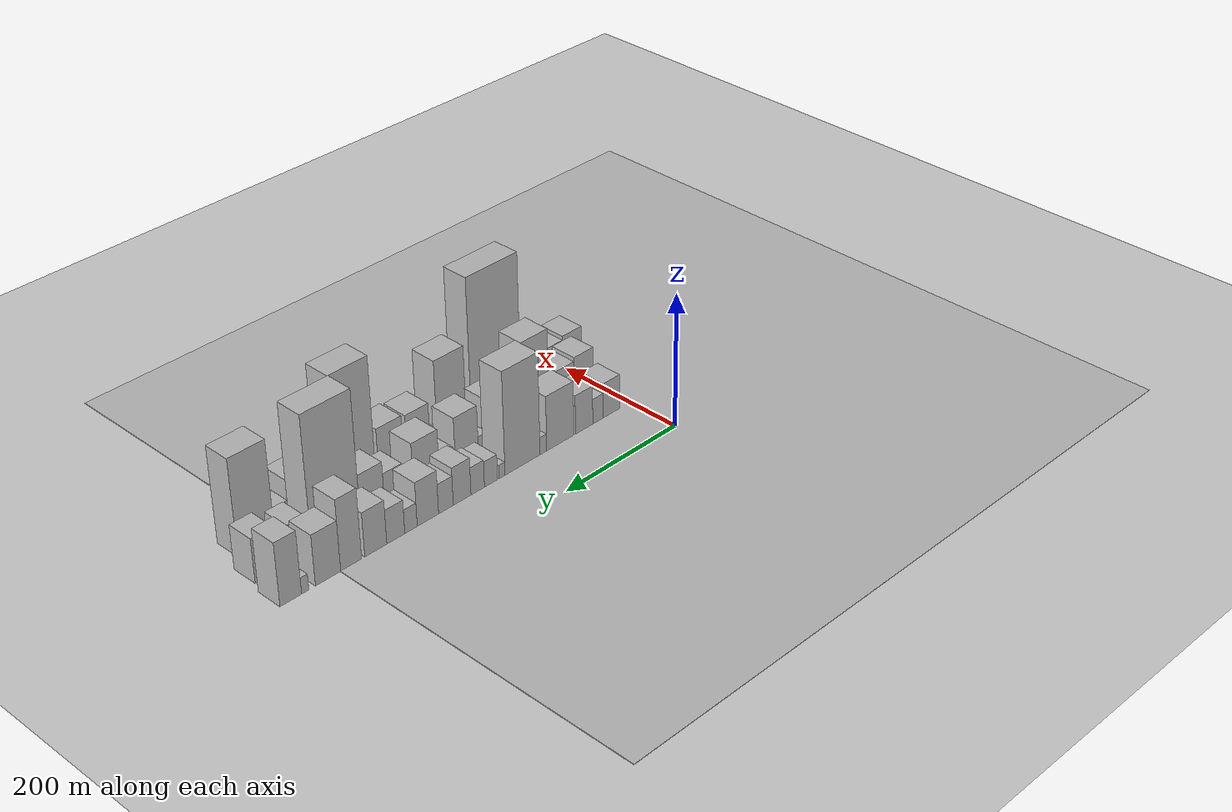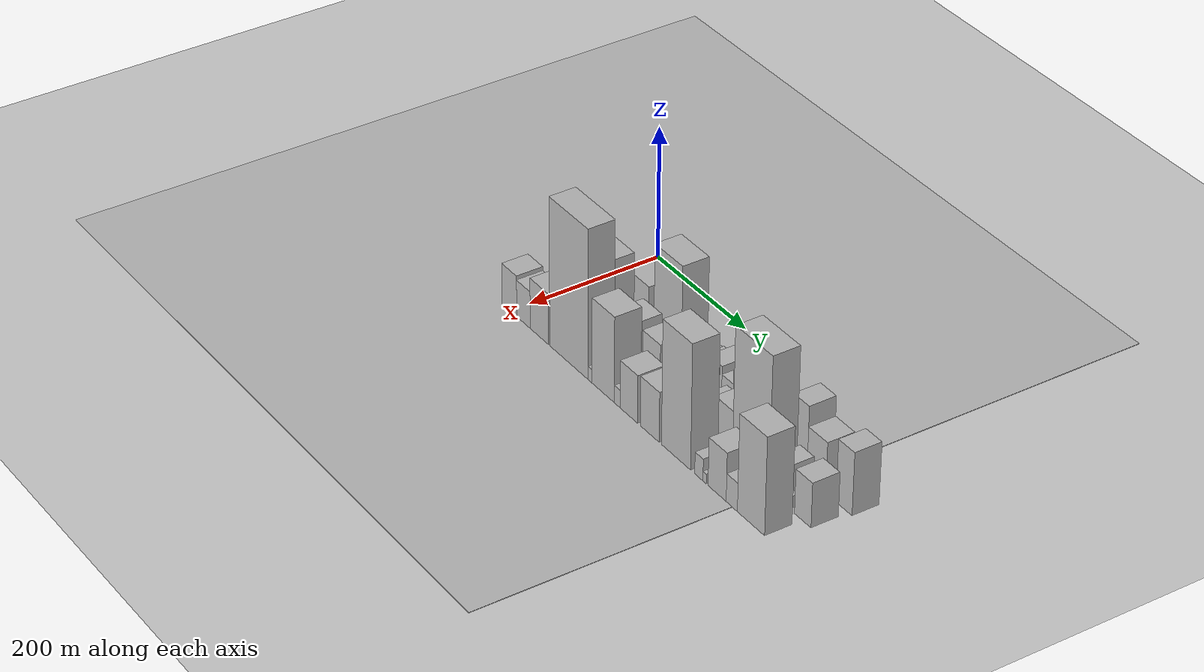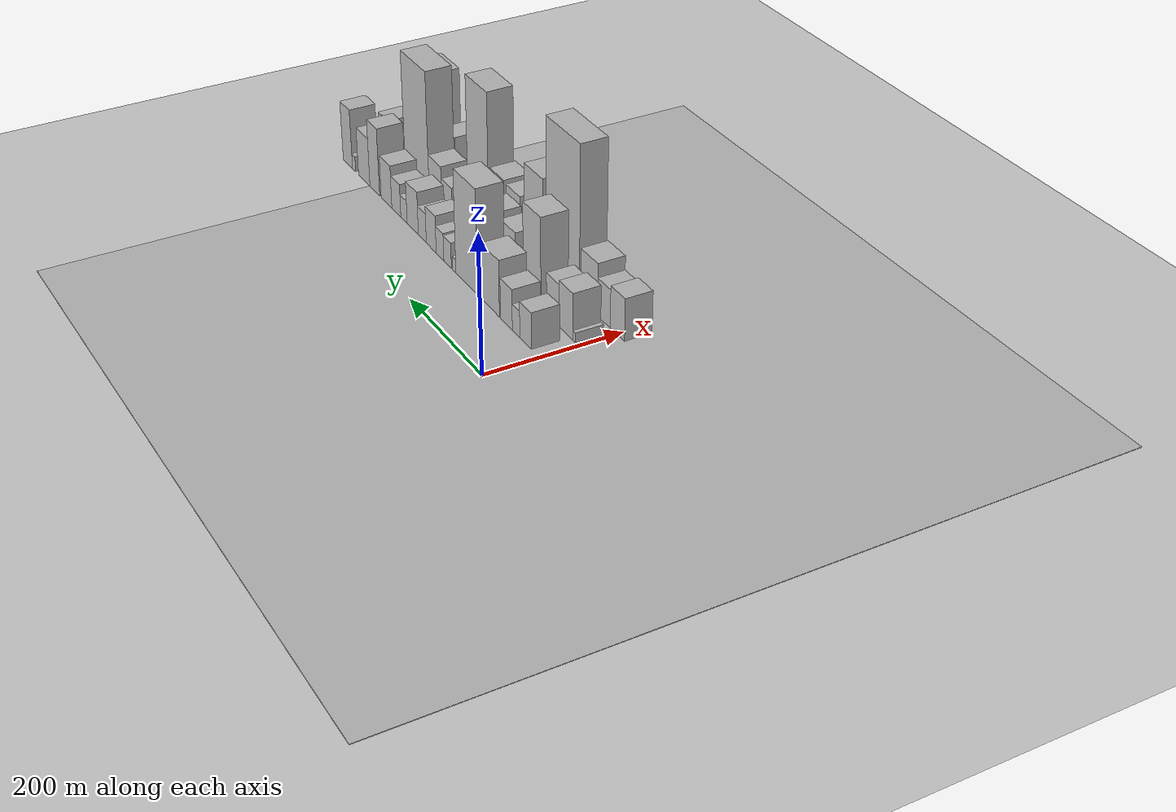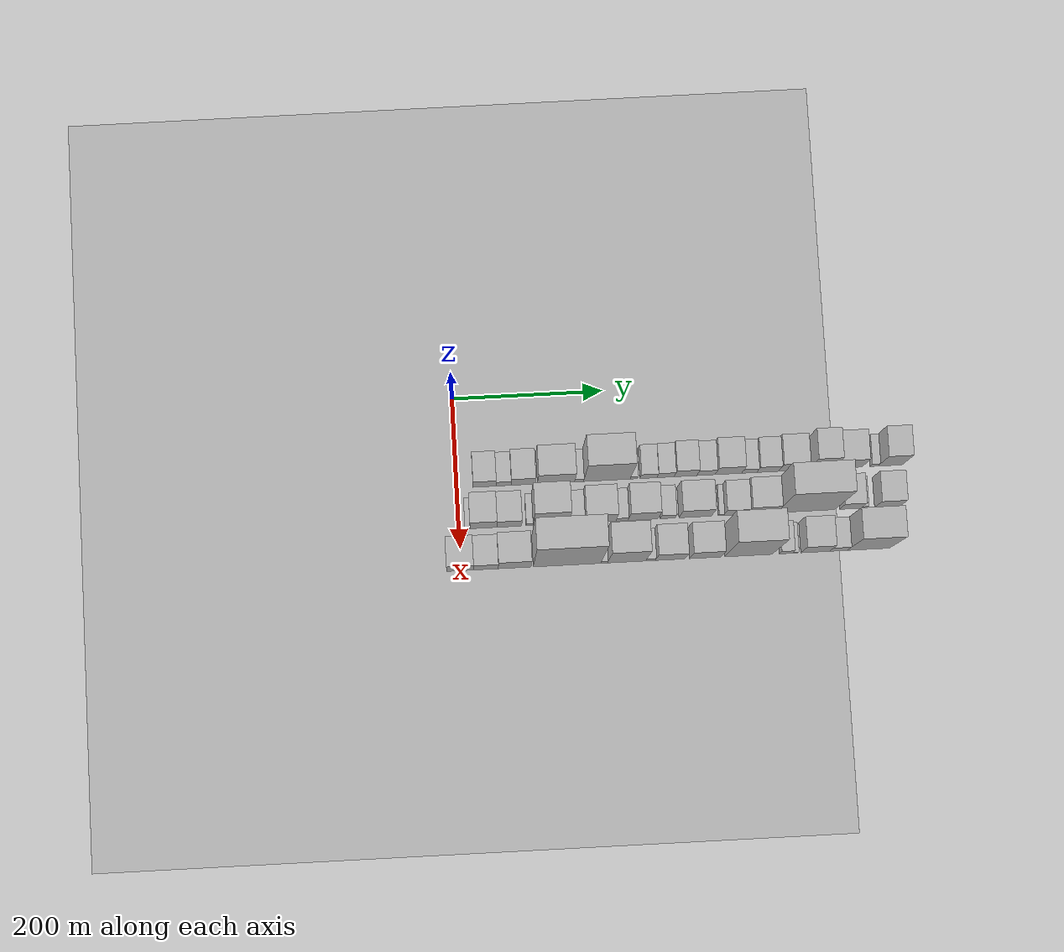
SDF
<sdf version="1.6">
 <world name="default">
  <include><name>ground_plane_1</name><uri>model://HANNAS_ground_plane</uri></include>
  <include>
   <name>ground_plane_2</name>
   <uri>model://HANNAS_ground_plane</uri>
   <pose>100 0 0  0 0 0</pose>
  </include>
  <model name="building_16">
   <static>1</static>
   <pose>100.0000 36.3263 0 0.000000 0.000000 0.000000</pose>
   <link name="link">
    <pose>0 0 27.00 0 0 0</pose>
    <collision name="collision"><geometry><box><size>40.0000 30.5769 54.0000</size></box></geometry></collision>
    <visual name="visual">
     <cast_shadows>0</cast_shadows>
     <geometry><box><size>40.0000 30.5769 54.0000</size></box></geometry>
     <material>
      <script>
       <uri>model://HANNAS_wall/materials/scripts</uri>
       <uri>model://HANNAS_wall/materials/textures</uri>
       <name>vrc/HANNAS_wall</name>
      </script>
     </material>
    </visual>
   </link>
  </model>
  <model name="building_17">
   <static>1</static>
   <pose>100.0000 61.5209 0 0.000000 0.000000 0.000000</pose>
   <link name="link">
    <pose>0 0 19.50 0 0 0</pose>
    <collision name="collision"><geometry><box><size>40.0000 19.8122 39.0000</size></box></geometry></collision>
    <visual name="visual">
     <cast_shadows>0</cast_shadows>
     <geometry><box><size>40.0000 19.8122 39.0000</size></box></geometry>
     <material>
      <script>
       <uri>model://HANNAS_wall/materials/scripts</uri>
       <uri>model://HANNAS_wall/materials/textures</uri>
       <name>vrc/HANNAS_wall</name>
      </script>
     </material>
    </visual>
   </link>
  </model>
  <model name="building_18">
   <static>1</static>
   <pose>100.0000 87.4213 0 0.000000 0.000000 0.000000</pose>
   <link name="link">
    <pose>0 0 30.00 0 0 0</pose>
    <collision name="collision"><geometry><box><size>40.0000 31.9886 60.0000</size></box></geometry></collision>
    <visual name="visual">
     <cast_shadows>0</cast_shadows>
     <geometry><box><size>40.0000 31.9886 60.0000</size></box></geometry>
     <material>
      <script>
       <uri>model://HANNAS_wall/materials/scripts</uri>
       <uri>model://HANNAS_wall/materials/textures</uri>
       <name>vrc/HANNAS_wall</name>
      </script>
     </material>
    </visual>
   </link>
  </model>
  <model name="building_19">
   <static>1</static>
   <pose>100.0000 131.0985 0 0.000000 0.000000 0.000000</pose>
   <link name="link">
    <pose>0 0 42.00 0 0 0</pose>
    <collision name="collision"><geometry><box><size>40.0000 49.3658 84.0000</size></box></geometry></collision>
    <visual name="visual">
     <cast_shadows>0</cast_shadows>
     <geometry><box><size>40.0000 49.3658 84.0000</size></box></geometry>
     <material>
      <script>
       <uri>model://HANNAS_wall/materials/scripts</uri>
       <uri>model://HANNAS_wall/materials/textures</uri>
       <name>vrc/HANNAS_wall</name>
      </script>
     </material>
    </visual>
   </link>
  </model>
  <model name="building_20">
   <static>1</static>
   <pose>100.0000 161.7609 0 0.000000 0.000000 0.000000</pose>
   <link name="link">
    <pose>0 0 13.50 0 0 0</pose>
    <collision name="collision"><geometry><box><size>40.0000 11.9590 27.0000</size></box></geometry></collision>
    <visual name="visual">
     <cast_shadows>0</cast_shadows>
     <geometry><box><size>40.0000 11.9590 27.0000</size></box></geometry>
     <material>
      <script>
       <uri>model://HANNAS_wall/materials/scripts</uri>
       <uri>model://HANNAS_wall/materials/textures</uri>
       <name>vrc/HANNAS_wall</name>
      </script>
     </material>
    </visual>
   </link>
  </model>
  <model name="building_21">
   <static>1</static>
   <pose>100.0000 198.7092 0 0.000000 0.000000 0.000000</pose>
   <link name="link">
    <pose>0 0 78.00 0 0 0</pose>
    <collision name="collision"><geometry><box><size>40.0000 61.9377 156.0000</size></box></geometry></collision>
    <visual name="visual">
     <cast_shadows>0</cast_shadows>
     <geometry><box><size>40.0000 61.9377 156.0000</size></box></geometry>
     <material>
      <script>
       <uri>model://HANNAS_wall/materials/scripts</uri>
       <uri>model://HANNAS_wall/materials/textures</uri>
       <name>vrc/HANNAS_wall</name>
      </script>
     </material>
    </visual>
   </link>
  </model>
  <model name="building_22">
   <static>1</static>
   <pose>100.0000 234.6944 0 0.000000 0.000000 0.000000</pose>
   <link name="link">
    <pose>0 0 10.50 0 0 0</pose>
    <collision name="collision"><geometry><box><size>40.0000 10.0326 21.0000</size></box></geometry></collision>
    <visual name="visual">
     <cast_shadows>0</cast_shadows>
     <geometry><box><size>40.0000 10.0326 21.0000</size></box></geometry>
     <material>
      <script>
       <uri>model://HANNAS_wall/materials/scripts</uri>
       <uri>model://HANNAS_wall/materials/textures</uri>
       <name>vrc/HANNAS_wall</name>
      </script>
     </material>
    </visual>
   </link>
  </model>
  <model name="building_23">
   <static>1</static>
   <pose>100.0000 253.9902 0 0.000000 0.000000 0.000000</pose>
   <link name="link">
    <pose>0 0 19.50 0 0 0</pose>
    <collision name="collision"><geometry><box><size>40.0000 22.5590 39.0000</size></box></geometry></collision>
    <visual name="visual">
     <cast_shadows>0</cast_shadows>
     <geometry><box><size>40.0000 22.5590 39.0000</size></box></geometry>
     <material>
      <script>
       <uri>model://HANNAS_wall/materials/scripts</uri>
       <uri>model://HANNAS_wall/materials/textures</uri>
       <name>vrc/HANNAS_wall</name>
      </script>
     </material>
    </visual>
   </link>
  </model>
  <model name="building_24">
   <static>1</static>
   <pose>100.0000 276.7857 0 0.000000 0.000000 0.000000</pose>
   <link name="link">
    <pose>0 0 21.00 0 0 0</pose>
    <collision name="collision"><geometry><box><size>40.0000 23.0320 42.0000</size></box></geometry></collision>
    <visual name="visual">
     <cast_shadows>0</cast_shadows>
     <geometry><box><size>40.0000 23.0320 42.0000</size></box></geometry>
     <material>
      <script>
       <uri>model://HANNAS_wall/materials/scripts</uri>
       <uri>model://HANNAS_wall/materials/textures</uri>
       <name>vrc/HANNAS_wall</name>
      </script>
     </material>
    </visual>
   </link>
  </model>
  <model name="building_25">
   <static>1</static>
   <pose>100.0000 303.2867 0 0.000000 0.000000 0.000000</pose>
   <link name="link">
    <pose>0 0 28.50 0 0 0</pose>
    <collision name="collision"><geometry><box><size>40.0000 29.9701 57.0000</size></box></geometry></collision>
    <visual name="visual">
     <cast_shadows>0</cast_shadows>
     <geometry><box><size>40.0000 29.9701 57.0000</size></box></geometry>
     <material>
      <script>
       <uri>model://HANNAS_wall/materials/scripts</uri>
       <uri>model://HANNAS_wall/materials/textures</uri>
       <name>vrc/HANNAS_wall</name>
      </script>
     </material>
    </visual>
   </link>
  </model>
  <model name="building_26">
   <static>1</static>
   <pose>100.0000 330.5248 0 0.000000 0.000000 0.000000</pose>
   <link name="link">
    <pose>0 0 22.50 0 0 0</pose>
    <collision name="collision"><geometry><box><size>40.0000 24.5061 45.0000</size></box></geometry></collision>
    <visual name="visual">
     <cast_shadows>0</cast_shadows>
     <geometry><box><size>40.0000 24.5061 45.0000</size></box></geometry>
     <material>
      <script>
       <uri>model://HANNAS_wall/materials/scripts</uri>
       <uri>model://HANNAS_wall/materials/textures</uri>
       <name>vrc/HANNAS_wall</name>
      </script>
     </material>
    </visual>
   </link>
  </model>
  <model name="building_27">
   <static>1</static>
   <pose>100.0000 360.3790 0 0.000000 0.000000 0.000000</pose>
   <link name="link">
    <pose>0 0 33.00 0 0 0</pose>
    <collision name="collision"><geometry><box><size>40.0000 35.2023 66.0000</size></box></geometry></collision>
    <visual name="visual">
     <cast_shadows>0</cast_shadows>
     <geometry><box><size>40.0000 35.2023 66.0000</size></box></geometry>
     <material>
      <script>
       <uri>model://HANNAS_wall/materials/scripts</uri>
       <uri>model://HANNAS_wall/materials/textures</uri>
       <name>vrc/HANNAS_wall</name>
      </script>
     </material>
    </visual>
   </link>
  </model>
  <model name="building_28">
   <static>1</static>
   <pose>100.0000 388.1173 0 0.000000 0.000000 0.000000</pose>
   <link name="link">
    <pose>0 0 18.00 0 0 0</pose>
    <collision name="collision"><geometry><box><size>40.0000 20.2742 36.0000</size></box></geometry></collision>
    <visual name="visual">
     <cast_shadows>0</cast_shadows>
     <geometry><box><size>40.0000 20.2742 36.0000</size></box></geometry>
     <material>
      <script>
       <uri>model://HANNAS_wall/materials/scripts</uri>
       <uri>model://HANNAS_wall/materials/textures</uri>
       <name>vrc/HANNAS_wall</name>
      </script>
     </material>
    </visual>
   </link>
  </model>
  <model name="building_29">
   <static>1</static>
   <pose>100.0000 412.7300 0 0.000000 0.000000 0.000000</pose>
   <link name="link">
    <pose>0 0 25.50 0 0 0</pose>
    <collision name="collision"><geometry><box><size>40.0000 28.9512 51.0000</size></box></geometry></collision>
    <visual name="visual">
     <cast_shadows>0</cast_shadows>
     <geometry><box><size>40.0000 28.9512 51.0000</size></box></geometry>
     <material>
      <script>
       <uri>model://HANNAS_wall/materials/scripts</uri>
       <uri>model://HANNAS_wall/materials/textures</uri>
       <name>vrc/HANNAS_wall</name>
      </script>
     </material>
    </visual>
   </link>
  </model>
  <model name="building_30">
   <static>1</static>
   <pose>100.0000 444.6950 0 0.000000 0.000000 0.000000</pose>
   <link name="link">
    <pose>0 0 33.00 0 0 0</pose>
    <collision name="collision"><geometry><box><size>40.0000 34.9790 66.0000</size></box></geometry></collision>
    <visual name="visual">
     <cast_shadows>0</cast_shadows>
     <geometry><box><size>40.0000 34.9790 66.0000</size></box></geometry>
     <material>
      <script>
       <uri>model://HANNAS_wall/materials/scripts</uri>
       <uri>model://HANNAS_wall/materials/textures</uri>
       <name>vrc/HANNAS_wall</name>
      </script>
     </material>
    </visual>
   </link>
  </model>
  <model name="building_31">
   <static>1</static>
   <pose>100.0000 483.4821 0 0.000000 0.000000 0.000000</pose>
   <link name="link">
    <pose>0 0 52.50 0 0 0</pose>
    <collision name="collision"><geometry><box><size>40.0000 32.5952 105.0000</size></box></geometry></collision>
    <visual name="visual">
     <cast_shadows>0</cast_shadows>
     <geometry><box><size>40.0000 32.5952 105.0000</size></box></geometry>
     <material>
      <script>
       <uri>model://HANNAS_wall/materials/scripts</uri>
       <uri>model://HANNAS_wall/materials/textures</uri>
       <name>vrc/HANNAS_wall</name>
      </script>
     </material>
    </visual>
   </link>
  </model>
  <model name="building_32">
   <static>1</static>
   <pose>100.0000 519.2023 0 0.000000 0.000000 0.000000</pose>
   <link name="link">
    <pose>0 0 37.50 0 0 0</pose>
    <collision name="collision"><geometry><box><size>40.0000 38.8451 75.0000</size></box></geometry></collision>
    <visual name="visual">
     <cast_shadows>0</cast_shadows>
     <geometry><box><size>40.0000 38.8451 75.0000</size></box></geometry>
     <material>
      <script>
       <uri>model://HANNAS_wall/materials/scripts</uri>
       <uri>model://HANNAS_wall/materials/textures</uri>
       <name>vrc/HANNAS_wall</name>
      </script>
     </material>
    </visual>
   </link>
  </model>
  <model name="building_33">
   <static>1</static>
   <pose>100.0000 554.0830 0 0.000000 0.000000 0.000000</pose>
   <link name="link">
    <pose>0 0 12.00 0 0 0</pose>
    <collision name="collision"><geometry><box><size>40.0000 10.9162 24.0000</size></box></geometry></collision>
    <visual name="visual">
     <cast_shadows>0</cast_shadows>
     <geometry><box><size>40.0000 10.9162 24.0000</size></box></geometry>
     <material>
      <script>
       <uri>model://HANNAS_wall/materials/scripts</uri>
       <uri>model://HANNAS_wall/materials/textures</uri>
       <name>vrc/HANNAS_wall</name>
      </script>
     </material>
    </visual>
   </link>
  </model>
  <model name="building_34">
   <static>1</static>
   <pose>100.0000 575.7398 0 0.000000 0.000000 0.000000</pose>
   <link name="link">
    <pose>0 0 46.50 0 0 0</pose>
    <collision name="collision"><geometry><box><size>40.0000 32.3975 93.0000</size></box></geometry></collision>
    <visual name="visual">
     <cast_shadows>0</cast_shadows>
     <geometry><box><size>40.0000 32.3975 93.0000</size></box></geometry>
     <material>
      <script>
       <uri>model://HANNAS_wall/materials/scripts</uri>
       <uri>model://HANNAS_wall/materials/textures</uri>
       <name>vrc/HANNAS_wall</name>
      </script>
     </material>
    </visual>
   </link>
  </model>
  <model name="building_53">
   <static>1</static>
   <pose>155.0000 10.7663 0 0.000000 0.000000 0.000000</pose>
   <link name="link">
    <pose>0 0 7.50 0 0 0</pose>
    <collision name="collision"><geometry><box><size>40.0000 6.7381 15.0000</size></box></geometry></collision>
    <visual name="visual">
     <cast_shadows>0</cast_shadows>
     <geometry><box><size>40.0000 6.7381 15.0000</size></box></geometry>
     <material>
      <script>
       <uri>model://HANNAS_wall/materials/scripts</uri>
       <uri>model://HANNAS_wall/materials/textures</uri>
       <name>vrc/HANNAS_wall</name>
      </script>
     </material>
    </visual>
   </link>
  </model>
  <model name="building_54">
   <static>1</static>
   <pose>155.0000 31.9293 0 0.000000 0.000000 0.000000</pose>
   <link name="link">
    <pose>0 0 34.50 0 0 0</pose>
    <collision name="collision"><geometry><box><size>40.0000 35.5880 69.0000</size></box></geometry></collision>
    <visual name="visual">
     <cast_shadows>0</cast_shadows>
     <geometry><box><size>40.0000 35.5880 69.0000</size></box></geometry>
     <material>
      <script>
       <uri>model://HANNAS_wall/materials/scripts</uri>
       <uri>model://HANNAS_wall/materials/textures</uri>
       <name>vrc/HANNAS_wall</name>
      </script>
     </material>
    </visual>
   </link>
  </model>
  <model name="building_55">
   <static>1</static>
   <pose>155.0000 66.1047 0 0.000000 0.000000 0.000000</pose>
   <link name="link">
    <pose>0 0 31.50 0 0 0</pose>
    <collision name="collision"><geometry><box><size>40.0000 32.7628 63.0000</size></box></geometry></collision>
    <visual name="visual">
     <cast_shadows>0</cast_shadows>
     <geometry><box><size>40.0000 32.7628 63.0000</size></box></geometry>
     <material>
      <script>
       <uri>model://HANNAS_wall/materials/scripts</uri>
       <uri>model://HANNAS_wall/materials/textures</uri>
       <name>vrc/HANNAS_wall</name>
      </script>
     </material>
    </visual>
   </link>
  </model>
  <model name="building_56">
   <static>1</static>
   <pose>155.0000 92.9295 0 0.000000 0.000000 0.000000</pose>
   <link name="link">
    <pose>0 0 10.50 0 0 0</pose>
    <collision name="collision"><geometry><box><size>40.0000 8.8868 21.0000</size></box></geometry></collision>
    <visual name="visual">
     <cast_shadows>0</cast_shadows>
     <geometry><box><size>40.0000 8.8868 21.0000</size></box></geometry>
     <material>
      <script>
       <uri>model://HANNAS_wall/materials/scripts</uri>
       <uri>model://HANNAS_wall/materials/textures</uri>
       <name>vrc/HANNAS_wall</name>
      </script>
     </material>
    </visual>
   </link>
  </model>
  <model name="building_57">
   <static>1</static>
   <pose>155.0000 120.9628 0 0.000000 0.000000 0.000000</pose>
   <link name="link">
    <pose>0 0 67.50 0 0 0</pose>
    <collision name="collision"><geometry><box><size>40.0000 47.1796 135.0000</size></box></geometry></collision>
    <visual name="visual">
     <cast_shadows>0</cast_shadows>
     <geometry><box><size>40.0000 47.1796 135.0000</size></box></geometry>
     <material>
      <script>
       <uri>model://HANNAS_wall/materials/scripts</uri>
       <uri>model://HANNAS_wall/materials/textures</uri>
       <name>vrc/HANNAS_wall</name>
      </script>
     </material>
    </visual>
   </link>
  </model>
  <model name="building_58">
   <static>1</static>
   <pose>155.0000 155.0983 0 0.000000 0.000000 0.000000</pose>
   <link name="link">
    <pose>0 0 18.00 0 0 0</pose>
    <collision name="collision"><geometry><box><size>40.0000 21.0915 36.0000</size></box></geometry></collision>
    <visual name="visual">
     <cast_shadows>0</cast_shadows>
     <geometry><box><size>40.0000 21.0915 36.0000</size></box></geometry>
     <material>
      <script>
       <uri>model://HANNAS_wall/materials/scripts</uri>
       <uri>model://HANNAS_wall/materials/textures</uri>
       <name>vrc/HANNAS_wall</name>
      </script>
     </material>
    </visual>
   </link>
  </model>
  <model name="building_59">
   <static>1</static>
   <pose>155.0000 186.5194 0 0.000000 0.000000 0.000000</pose>
   <link name="link">
    <pose>0 0 39.00 0 0 0</pose>
    <collision name="collision"><geometry><box><size>40.0000 41.7508 78.0000</size></box></geometry></collision>
    <visual name="visual">
     <cast_shadows>0</cast_shadows>
     <geometry><box><size>40.0000 41.7508 78.0000</size></box></geometry>
     <material>
      <script>
       <uri>model://HANNAS_wall/materials/scripts</uri>
       <uri>model://HANNAS_wall/materials/textures</uri>
       <name>vrc/HANNAS_wall</name>
      </script>
     </material>
    </visual>
   </link>
  </model>
  <model name="building_60">
   <static>1</static>
   <pose>155.0000 215.4919 0 0.000000 0.000000 0.000000</pose>
   <link name="link">
    <pose>0 0 15.00 0 0 0</pose>
    <collision name="collision"><geometry><box><size>40.0000 16.1943 30.0000</size></box></geometry></collision>
    <visual name="visual">
     <cast_shadows>0</cast_shadows>
     <geometry><box><size>40.0000 16.1943 30.0000</size></box></geometry>
     <material>
      <script>
       <uri>model://HANNAS_wall/materials/scripts</uri>
       <uri>model://HANNAS_wall/materials/textures</uri>
       <name>vrc/HANNAS_wall</name>
      </script>
     </material>
    </visual>
   </link>
  </model>
  <model name="building_61">
   <static>1</static>
   <pose>155.0000 243.4715 0 0.000000 0.000000 0.000000</pose>
   <link name="link">
    <pose>0 0 39.00 0 0 0</pose>
    <collision name="collision"><geometry><box><size>40.0000 39.7648 78.0000</size></box></geometry></collision>
    <visual name="visual">
     <cast_shadows>0</cast_shadows>
     <geometry><box><size>40.0000 39.7648 78.0000</size></box></geometry>
     <material>
      <script>
       <uri>model://HANNAS_wall/materials/scripts</uri>
       <uri>model://HANNAS_wall/materials/textures</uri>
       <name>vrc/HANNAS_wall</name>
      </script>
     </material>
    </visual>
   </link>
  </model>
  <model name="building_62">
   <static>1</static>
   <pose>155.0000 276.2190 0 0.000000 0.000000 0.000000</pose>
   <link name="link">
    <pose>0 0 18.00 0 0 0</pose>
    <collision name="collision"><geometry><box><size>40.0000 19.7302 36.0000</size></box></geometry></collision>
    <visual name="visual">
     <cast_shadows>0</cast_shadows>
     <geometry><box><size>40.0000 19.7302 36.0000</size></box></geometry>
     <material>
      <script>
       <uri>model://HANNAS_wall/materials/scripts</uri>
       <uri>model://HANNAS_wall/materials/textures</uri>
       <name>vrc/HANNAS_wall</name>
      </script>
     </material>
    </visual>
   </link>
  </model>
  <model name="building_63">
   <static>1</static>
   <pose>155.0000 312.7297 0 0.000000 0.000000 0.000000</pose>
   <link name="link">
    <pose>0 0 37.50 0 0 0</pose>
    <collision name="collision"><geometry><box><size>40.0000 43.2913 75.0000</size></box></geometry></collision>
    <visual name="visual">
     <cast_shadows>0</cast_shadows>
     <geometry><box><size>40.0000 43.2913 75.0000</size></box></geometry>
     <material>
      <script>
       <uri>model://HANNAS_wall/materials/scripts</uri>
       <uri>model://HANNAS_wall/materials/textures</uri>
       <name>vrc/HANNAS_wall</name>
      </script>
     </material>
    </visual>
   </link>
  </model>
  <model name="building_64">
   <static>1</static>
   <pose>155.0000 346.9850 0 0.000000 0.000000 0.000000</pose>
   <link name="link">
    <pose>0 0 7.50 0 0 0</pose>
    <collision name="collision"><geometry><box><size>40.0000 7.2193 15.0000</size></box></geometry></collision>
    <visual name="visual">
     <cast_shadows>0</cast_shadows>
     <geometry><box><size>40.0000 7.2193 15.0000</size></box></geometry>
     <material>
      <script>
       <uri>model://HANNAS_wall/materials/scripts</uri>
       <uri>model://HANNAS_wall/materials/textures</uri>
       <name>vrc/HANNAS_wall</name>
      </script>
     </material>
    </visual>
   </link>
  </model>
  <model name="building_65">
   <static>1</static>
   <pose>155.0000 366.3288 0 0.000000 0.000000 0.000000</pose>
   <link name="link">
    <pose>0 0 27.00 0 0 0</pose>
    <collision name="collision"><geometry><box><size>40.0000 31.4682 54.0000</size></box></geometry></collision>
    <visual name="visual">
     <cast_shadows>0</cast_shadows>
     <geometry><box><size>40.0000 31.4682 54.0000</size></box></geometry>
     <material>
      <script>
       <uri>model://HANNAS_wall/materials/scripts</uri>
       <uri>model://HANNAS_wall/materials/textures</uri>
       <name>vrc/HANNAS_wall</name>
      </script>
     </material>
    </visual>
   </link>
  </model>
  <model name="building_66">
   <static>1</static>
   <pose>155.0000 401.7049 0 0.000000 0.000000 0.000000</pose>
   <link name="link">
    <pose>0 0 36.00 0 0 0</pose>
    <collision name="collision"><geometry><box><size>40.0000 39.2841 72.0000</size></box></geometry></collision>
    <visual name="visual">
     <cast_shadows>0</cast_shadows>
     <geometry><box><size>40.0000 39.2841 72.0000</size></box></geometry>
     <material>
      <script>
       <uri>model://HANNAS_wall/materials/scripts</uri>
       <uri>model://HANNAS_wall/materials/textures</uri>
       <name>vrc/HANNAS_wall</name>
      </script>
     </material>
    </visual>
   </link>
  </model>
  <model name="building_67">
   <static>1</static>
   <pose>155.0000 459.8342 0 0.000000 0.000000 0.000000</pose>
   <link name="link">
    <pose>0 0 99.00 0 0 0</pose>
    <collision name="collision"><geometry><box><size>40.0000 76.9744 198.0000</size></box></geometry></collision>
    <visual name="visual">
     <cast_shadows>0</cast_shadows>
     <geometry><box><size>40.0000 76.9744 198.0000</size></box></geometry>
     <material>
      <script>
       <uri>model://HANNAS_wall/materials/scripts</uri>
       <uri>model://HANNAS_wall/materials/textures</uri>
       <name>vrc/HANNAS_wall</name>
      </script>
     </material>
    </visual>
   </link>
  </model>
  <model name="building_68">
   <static>1</static>
   <pose>155.0000 518.6392 0 0.000000 0.000000 0.000000</pose>
   <link name="link">
    <pose>0 0 28.50 0 0 0</pose>
    <collision name="collision"><geometry><box><size>40.0000 28.6357 57.0000</size></box></geometry></collision>
    <visual name="visual">
     <cast_shadows>0</cast_shadows>
     <geometry><box><size>40.0000 28.6357 57.0000</size></box></geometry>
     <material>
      <script>
       <uri>model://HANNAS_wall/materials/scripts</uri>
       <uri>model://HANNAS_wall/materials/textures</uri>
       <name>vrc/HANNAS_wall</name>
      </script>
     </material>
    </visual>
   </link>
  </model>
  <model name="building_69">
   <static>1</static>
   <pose>155.0000 536.9262 0 0.000000 0.000000 0.000000</pose>
   <link name="link">
    <pose>0 0 9.00 0 0 0</pose>
    <collision name="collision"><geometry><box><size>40.0000 7.9383 18.0000</size></box></geometry></collision>
    <visual name="visual">
     <cast_shadows>0</cast_shadows>
     <geometry><box><size>40.0000 7.9383 18.0000</size></box></geometry>
     <material>
      <script>
       <uri>model://HANNAS_wall/materials/scripts</uri>
       <uri>model://HANNAS_wall/materials/textures</uri>
       <name>vrc/HANNAS_wall</name>
      </script>
     </material>
    </visual>
   </link>
  </model>
  <model name="building_70">
   <static>1</static>
   <pose>155.0000 567.7470 0 0.000000 0.000000 0.000000</pose>
   <link name="link">
    <pose>0 0 33.00 0 0 0</pose>
    <collision name="collision"><geometry><box><size>40.0000 33.7032 66.0000</size></box></geometry></collision>
    <visual name="visual">
     <cast_shadows>0</cast_shadows>
     <geometry><box><size>40.0000 33.7032 66.0000</size></box></geometry>
     <material>
      <script>
       <uri>model://HANNAS_wall/materials/scripts</uri>
       <uri>model://HANNAS_wall/materials/textures</uri>
       <name>vrc/HANNAS_wall</name>
      </script>
     </material>
    </visual>
   </link>
  </model>
  <model name="building_90">
   <static>1</static>
   <pose>210.0000 -1.5593 0 0.000000 0.000000 0.000000</pose>
   <link name="link">
    <pose>0 0 31.50 0 0 0</pose>
    <collision name="collision"><geometry><box><size>40.0000 35.4453 63.0000</size></box></geometry></collision>
    <visual name="visual">
     <cast_shadows>0</cast_shadows>
     <geometry><box><size>40.0000 35.4453 63.0000</size></box></geometry>
     <material>
      <script>
       <uri>model://HANNAS_wall/materials/scripts</uri>
       <uri>model://HANNAS_wall/materials/textures</uri>
       <name>vrc/HANNAS_wall</name>
      </script>
     </material>
    </visual>
   </link>
  </model>
  <model name="building_91">
   <static>1</static>
   <pose>210.0000 32.3518 0 0.000000 0.000000 0.000000</pose>
   <link name="link">
    <pose>0 0 28.50 0 0 0</pose>
    <collision name="collision"><geometry><box><size>40.0000 32.3770 57.0000</size></box></geometry></collision>
    <visual name="visual">
     <cast_shadows>0</cast_shadows>
     <geometry><box><size>40.0000 32.3770 57.0000</size></box></geometry>
     <material>
      <script>
       <uri>model://HANNAS_wall/materials/scripts</uri>
       <uri>model://HANNAS_wall/materials/textures</uri>
       <name>vrc/HANNAS_wall</name>
      </script>
     </material>
    </visual>
   </link>
  </model>
  <model name="building_92">
   <static>1</static>
   <pose>210.0000 70.2276 0 0.000000 0.000000 0.000000</pose>
   <link name="link">
    <pose>0 0 39.00 0 0 0</pose>
    <collision name="collision"><geometry><box><size>40.0000 43.3746 78.0000</size></box></geometry></collision>
    <visual name="visual">
     <cast_shadows>0</cast_shadows>
     <geometry><box><size>40.0000 43.3746 78.0000</size></box></geometry>
     <material>
      <script>
       <uri>model://HANNAS_wall/materials/scripts</uri>
       <uri>model://HANNAS_wall/materials/textures</uri>
       <name>vrc/HANNAS_wall</name>
      </script>
     </material>
    </visual>
   </link>
  </model>
  <model name="building_93">
   <static>1</static>
   <pose>210.0000 139.5521 0 0.000000 0.000000 0.000000</pose>
   <link name="link">
    <pose>0 0 112.50 0 0 0</pose>
    <collision name="collision"><geometry><box><size>40.0000 89.2744 225.0000</size></box></geometry></collision>
    <visual name="visual">
     <cast_shadows>0</cast_shadows>
     <geometry><box><size>40.0000 89.2744 225.0000</size></box></geometry>
     <material>
      <script>
       <uri>model://HANNAS_wall/materials/scripts</uri>
       <uri>model://HANNAS_wall/materials/textures</uri>
       <name>vrc/HANNAS_wall</name>
      </script>
     </material>
    </visual>
   </link>
  </model>
  <model name="building_94">
   <static>1</static>
   <pose>210.0000 188.7017 0 0.000000 0.000000 0.000000</pose>
   <link name="link">
    <pose>0 0 10.50 0 0 0</pose>
    <collision name="collision"><geometry><box><size>40.0000 9.0247 21.0000</size></box></geometry></collision>
    <visual name="visual">
     <cast_shadows>0</cast_shadows>
     <geometry><box><size>40.0000 9.0247 21.0000</size></box></geometry>
     <material>
      <script>
       <uri>model://HANNAS_wall/materials/scripts</uri>
       <uri>model://HANNAS_wall/materials/textures</uri>
       <name>vrc/HANNAS_wall</name>
      </script>
     </material>
    </visual>
   </link>
  </model>
  <model name="building_95">
   <static>1</static>
   <pose>210.0000 218.4940 0 0.000000 0.000000 0.000000</pose>
   <link name="link">
    <pose>0 0 64.50 0 0 0</pose>
    <collision name="collision"><geometry><box><size>40.0000 50.5601 129.0000</size></box></geometry></collision>
    <visual name="visual">
     <cast_shadows>0</cast_shadows>
     <geometry><box><size>40.0000 50.5601 129.0000</size></box></geometry>
     <material>
      <script>
       <uri>model://HANNAS_wall/materials/scripts</uri>
       <uri>model://HANNAS_wall/materials/textures</uri>
       <name>vrc/HANNAS_wall</name>
      </script>
     </material>
    </visual>
   </link>
  </model>
  <model name="building_96">
   <static>1</static>
   <pose>210.0000 250.1206 0 0.000000 0.000000 0.000000</pose>
   <link name="link">
    <pose>0 0 13.50 0 0 0</pose>
    <collision name="collision"><geometry><box><size>40.0000 12.6931 27.0000</size></box></geometry></collision>
    <visual name="visual">
     <cast_shadows>0</cast_shadows>
     <geometry><box><size>40.0000 12.6931 27.0000</size></box></geometry>
     <material>
      <script>
       <uri>model://HANNAS_wall/materials/scripts</uri>
       <uri>model://HANNAS_wall/materials/textures</uri>
       <name>vrc/HANNAS_wall</name>
      </script>
     </material>
    </visual>
   </link>
  </model>
  <model name="building_97">
   <static>1</static>
   <pose>210.0000 276.0924 0 0.000000 0.000000 0.000000</pose>
   <link name="link">
    <pose>0 0 36.00 0 0 0</pose>
    <collision name="collision"><geometry><box><size>40.0000 39.2506 72.0000</size></box></geometry></collision>
    <visual name="visual">
     <cast_shadows>0</cast_shadows>
     <geometry><box><size>40.0000 39.2506 72.0000</size></box></geometry>
     <material>
      <script>
       <uri>model://HANNAS_wall/materials/scripts</uri>
       <uri>model://HANNAS_wall/materials/textures</uri>
       <name>vrc/HANNAS_wall</name>
      </script>
     </material>
    </visual>
   </link>
  </model>
  <model name="building_98">
   <static>1</static>
   <pose>210.0000 322.5627 0 0.000000 0.000000 0.000000</pose>
   <link name="link">
    <pose>0 0 37.50 0 0 0</pose>
    <collision name="collision"><geometry><box><size>40.0000 41.6899 75.0000</size></box></geometry></collision>
    <visual name="visual">
     <cast_shadows>0</cast_shadows>
     <geometry><box><size>40.0000 41.6899 75.0000</size></box></geometry>
     <material>
      <script>
       <uri>model://HANNAS_wall/materials/scripts</uri>
       <uri>model://HANNAS_wall/materials/textures</uri>
       <name>vrc/HANNAS_wall</name>
      </script>
     </material>
    </visual>
   </link>
  </model>
  <model name="building_99">
   <static>1</static>
   <pose>210.0000 379.9322 0 0.000000 0.000000 0.000000</pose>
   <link name="link">
    <pose>0 0 93.00 0 0 0</pose>
    <collision name="collision"><geometry><box><size>40.0000 63.0492 186.0000</size></box></geometry></collision>
    <visual name="visual">
     <cast_shadows>0</cast_shadows>
     <geometry><box><size>40.0000 63.0492 186.0000</size></box></geometry>
     <material>
      <script>
       <uri>model://HANNAS_wall/materials/scripts</uri>
       <uri>model://HANNAS_wall/materials/textures</uri>
       <name>vrc/HANNAS_wall</name>
      </script>
     </material>
    </visual>
   </link>
  </model>
  <model name="building_100">
   <static>1</static>
   <pose>210.0000 429.2203 0 0.000000 0.000000 0.000000</pose>
   <link name="link">
    <pose>0 0 16.50 0 0 0</pose>
    <collision name="collision"><geometry><box><size>40.0000 17.5269 33.0000</size></box></geometry></collision>
    <visual name="visual">
     <cast_shadows>0</cast_shadows>
     <geometry><box><size>40.0000 17.5269 33.0000</size></box></geometry>
     <material>
      <script>
       <uri>model://HANNAS_wall/materials/scripts</uri>
       <uri>model://HANNAS_wall/materials/textures</uri>
       <name>vrc/HANNAS_wall</name>
      </script>
     </material>
    </visual>
   </link>
  </model>
  <model name="building_101">
   <static>1</static>
   <pose>210.0000 441.4920 0 0.000000 0.000000 0.000000</pose>
   <link name="link">
    <pose>0 0 7.50 0 0 0</pose>
    <collision name="collision"><geometry><box><size>40.0000 7.0165 15.0000</size></box></geometry></collision>
    <visual name="visual">
     <cast_shadows>0</cast_shadows>
     <geometry><box><size>40.0000 7.0165 15.0000</size></box></geometry>
     <material>
      <script>
       <uri>model://HANNAS_wall/materials/scripts</uri>
       <uri>model://HANNAS_wall/materials/textures</uri>
       <name>vrc/HANNAS_wall</name>
      </script>
     </material>
    </visual>
   </link>
  </model>
  <model name="building_102">
   <static>1</static>
   <pose>210.0000 468.0903 0 0.000000 0.000000 0.000000</pose>
   <link name="link">
    <pose>0 0 36.00 0 0 0</pose>
    <collision name="collision"><geometry><box><size>40.0000 38.1800 72.0000</size></box></geometry></collision>
    <visual name="visual">
     <cast_shadows>0</cast_shadows>
     <geometry><box><size>40.0000 38.1800 72.0000</size></box></geometry>
     <material>
      <script>
       <uri>model://HANNAS_wall/materials/scripts</uri>
       <uri>model://HANNAS_wall/materials/textures</uri>
       <name>vrc/HANNAS_wall</name>
      </script>
     </material>
    </visual>
   </link>
  </model>
  <model name="building_103">
   <static>1</static>
   <pose>210.0000 498.9270 0 0.000000 0.000000 0.000000</pose>
   <link name="link">
    <pose>0 0 21.00 0 0 0</pose>
    <collision name="collision"><geometry><box><size>40.0000 23.4934 42.0000</size></box></geometry></collision>
    <visual name="visual">
     <cast_shadows>0</cast_shadows>
     <geometry><box><size>40.0000 23.4934 42.0000</size></box></geometry>
     <material>
      <script>
       <uri>model://HANNAS_wall/materials/scripts</uri>
       <uri>model://HANNAS_wall/materials/textures</uri>
       <name>vrc/HANNAS_wall</name>
      </script>
     </material>
    </visual>
   </link>
  </model>
  <model name="building_104">
   <static>1</static>
   <pose>210.0000 538.8080 0 0.000000 0.000000 0.000000</pose>
   <link name="link">
    <pose>0 0 72.00 0 0 0</pose>
    <collision name="collision"><geometry><box><size>40.0000 56.2687 144.0000</size></box></geometry></collision>
    <visual name="visual">
     <cast_shadows>0</cast_shadows>
     <geometry><box><size>40.0000 56.2687 144.0000</size></box></geometry>
     <material>
      <script>
       <uri>model://HANNAS_wall/materials/scripts</uri>
       <uri>model://HANNAS_wall/materials/textures</uri>
       <name>vrc/HANNAS_wall</name>
      </script>
     </material>
    </visual>
   </link>
  </model>
 </world>
</sdf>
